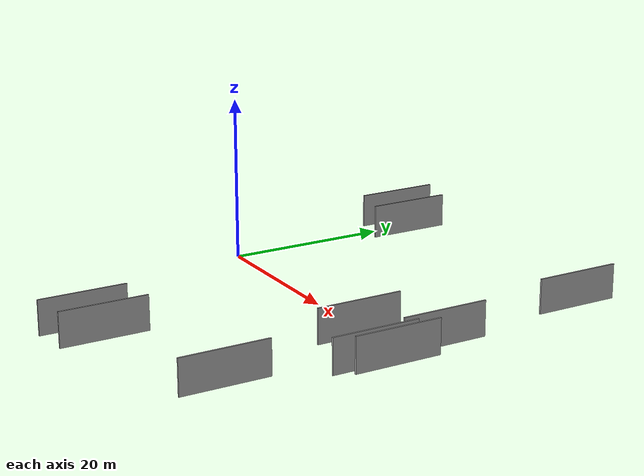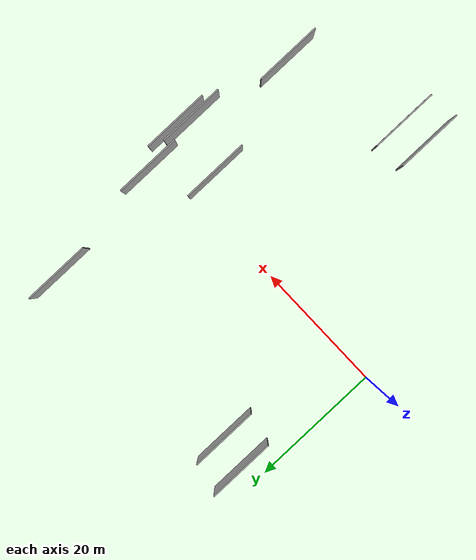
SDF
<sdf version="1.6">
 <world name="default">
  <scene>
   <sky><clouds><speed>12</speed></clouds></sky>
   <ambient>0.4 0.4 0.4 1</ambient>
   <background>0.7 0.7 0.7 1</background>
   <shadows>1</shadows>
  </scene>
  <gravity>0 0 -9.8066</gravity>
  <magnetic_field>6e-06 2.3e-05 -4.2e-05</magnetic_field>
  <physics default="0" name="default_physics" type="ode">
   <ode>
    <solver>
     <type>quick</type>
     <iters>10</iters>
     <sor>1.0</sor>
     <use_dynamic_moi_rescaling>0</use_dynamic_moi_rescaling>
    </solver>
    <constraints>
     <cfm>0</cfm>
     <erp>0.2</erp>
     <contact_max_correcting_vel>100</contact_max_correcting_vel>
     <contact_surface_layer>0.001</contact_surface_layer>
    </constraints>
   </ode>
   <max_step_size>0.004</max_step_size>
   <real_time_factor>1</real_time_factor>
   <real_time_update_rate>250</real_time_update_rate>
  </physics>
  <light name="sun" type="directional">
   <pose>0 0 10 0 0 0</pose>
   <diffuse>0.8 0.8 0.8 1</diffuse>
   <specular>0.2 0.2 0.2 1</specular>
   <attenuation>
    <range>1000</range>
    <constant>0.9</constant>
    <linear>0.01</linear>
    <quadratic>0.001</quadratic>
   </attenuation>
   <direction>-0.5 0.1 -0.9</direction>
  </light>
  <model name="grey_wall_1">
   <static>1</static>
   <pose>18.9082 -27.8652 2.5 0.000000 0.000000 1.570796</pose>
   <link name="link">
    <pose>0 0 2.00 0 0 0</pose>
    <collision name="collision"><geometry><box><size>10.00 0.2 4.00</size></box></geometry></collision>
    <visual name="visual">
     <cast_shadows>0</cast_shadows>
     <geometry><box><size>10.00 0.2 4.00</size></box></geometry>
     <material>
      <script>
       <uri>model://grey_wall/materials/scripts</uri>
       <uri>model://grey_wall/materials/textures</uri>
       <name>vrc/grey_wall</name>
      </script>
     </material>
    </visual>
   </link>
  </model>
  <model name="grey_wall_2">
   <static>1</static>
   <pose>35.7201 -4.1068 2.5 0.000000 0.000000 1.570796</pose>
   <link name="link">
    <pose>0 0 2.00 0 0 0</pose>
    <collision name="collision"><geometry><box><size>10.00 0.2 4.00</size></box></geometry></collision>
    <visual name="visual">
     <cast_shadows>0</cast_shadows>
     <geometry><box><size>10.00 0.2 4.00</size></box></geometry>
     <material>
      <script>
       <uri>model://grey_wall/materials/scripts</uri>
       <uri>model://grey_wall/materials/textures</uri>
       <name>vrc/grey_wall</name>
      </script>
     </material>
    </visual>
   </link>
  </model>
  <model name="grey_wall_3">
   <static>1</static>
   <pose>8.5981 19.7117 2.5 0.000000 0.000000 1.570796</pose>
   <link name="link">
    <pose>0 0 2.00 0 0 0</pose>
    <collision name="collision"><geometry><box><size>10.00 0.2 4.00</size></box></geometry></collision>
    <visual name="visual">
     <cast_shadows>0</cast_shadows>
     <geometry><box><size>10.00 0.2 4.00</size></box></geometry>
     <material>
      <script>
       <uri>model://grey_wall/materials/scripts</uri>
       <uri>model://grey_wall/materials/textures</uri>
       <name>vrc/grey_wall</name>
      </script>
     </material>
    </visual>
   </link>
  </model>
  <model name="grey_wall_4">
   <static>1</static>
   <pose>23.2331 -27.2726 2.5 0.000000 0.000000 1.570796</pose>
   <link name="link">
    <pose>0 0 2.00 0 0 0</pose>
    <collision name="collision"><geometry><box><size>10.00 0.2 4.00</size></box></geometry></collision>
    <visual name="visual">
     <cast_shadows>0</cast_shadows>
     <geometry><box><size>10.00 0.2 4.00</size></box></geometry>
     <material>
      <script>
       <uri>model://grey_wall/materials/scripts</uri>
       <uri>model://grey_wall/materials/textures</uri>
       <name>vrc/grey_wall</name>
      </script>
     </material>
    </visual>
   </link>
  </model>
  <model name="grey_wall_5">
   <static>1</static>
   <pose>43.3769 -6.8675 2.5 0.000000 0.000000 1.570796</pose>
   <link name="link">
    <pose>0 0 2.00 0 0 0</pose>
    <collision name="collision"><geometry><box><size>10.00 0.2 4.00</size></box></geometry></collision>
    <visual name="visual">
     <cast_shadows>0</cast_shadows>
     <geometry><box><size>10.00 0.2 4.00</size></box></geometry>
     <material>
      <script>
       <uri>model://grey_wall/materials/scripts</uri>
       <uri>model://grey_wall/materials/textures</uri>
       <name>vrc/grey_wall</name>
      </script>
     </material>
    </visual>
   </link>
  </model>
  <model name="grey_wall_6">
   <static>1</static>
   <pose>40.2930 20.8806 2.5 0.000000 0.000000 1.570796</pose>
   <link name="link">
    <pose>0 0 2.00 0 0 0</pose>
    <collision name="collision"><geometry><box><size>10.00 0.2 4.00</size></box></geometry></collision>
    <visual name="visual">
     <cast_shadows>0</cast_shadows>
     <geometry><box><size>10.00 0.2 4.00</size></box></geometry>
     <material>
      <script>
       <uri>model://grey_wall/materials/scripts</uri>
       <uri>model://grey_wall/materials/textures</uri>
       <name>vrc/grey_wall</name>
      </script>
     </material>
    </visual>
   </link>
  </model>
  <model name="grey_wall_7">
   <static>1</static>
   <pose>3.9316 20.9392 2.5 0.000000 0.000000 1.570796</pose>
   <link name="link">
    <pose>0 0 2.00 0 0 0</pose>
    <collision name="collision"><geometry><box><size>10.00 0.2 4.00</size></box></geometry></collision>
    <visual name="visual">
     <cast_shadows>0</cast_shadows>
     <geometry><box><size>10.00 0.2 4.00</size></box></geometry>
     <material>
      <script>
       <uri>model://grey_wall/materials/scripts</uri>
       <uri>model://grey_wall/materials/textures</uri>
       <name>vrc/grey_wall</name>
      </script>
     </material>
    </visual>
   </link>
  </model>
  <model name="grey_wall_8">
   <static>1</static>
   <pose>40.4232 -21.9972 2.5 0.000000 0.000000 1.570796</pose>
   <link name="link">
    <pose>0 0 2.00 0 0 0</pose>
    <collision name="collision"><geometry><box><size>10.00 0.2 4.00</size></box></geometry></collision>
    <visual name="visual">
     <cast_shadows>0</cast_shadows>
     <geometry><box><size>10.00 0.2 4.00</size></box></geometry>
     <material>
      <script>
       <uri>model://grey_wall/materials/scripts</uri>
       <uri>model://grey_wall/materials/textures</uri>
       <name>vrc/grey_wall</name>
      </script>
     </material>
    </visual>
   </link>
  </model>
  <model name="grey_wall_9">
   <static>1</static>
   <pose>44.2472 -4.7780 2.5 0.000000 0.000000 1.570796</pose>
   <link name="link">
    <pose>0 0 2.00 0 0 0</pose>
    <collision name="collision"><geometry><box><size>10.00 0.2 4.00</size></box></geometry></collision>
    <visual name="visual">
     <cast_shadows>0</cast_shadows>
     <geometry><box><size>10.00 0.2 4.00</size></box></geometry>
     <material>
      <script>
       <uri>model://grey_wall/materials/scripts</uri>
       <uri>model://grey_wall/materials/textures</uri>
       <name>vrc/grey_wall</name>
      </script>
     </material>
    </visual>
   </link>
  </model>
  <model name="grey_wall_10">
   <static>1</static>
   <pose>42.4377 2.0040 2.5 0.000000 0.000000 1.570796</pose>
   <link name="link">
    <pose>0 0 2.00 0 0 0</pose>
    <collision name="collision"><geometry><box><size>10.00 0.2 4.00</size></box></geometry></collision>
    <visual name="visual">
     <cast_shadows>0</cast_shadows>
     <geometry><box><size>10.00 0.2 4.00</size></box></geometry>
     <material>
      <script>
       <uri>model://grey_wall/materials/scripts</uri>
       <uri>model://grey_wall/materials/textures</uri>
       <name>vrc/grey_wall</name>
      </script>
     </material>
    </visual>
   </link>
  </model>
 </world>
</sdf>
